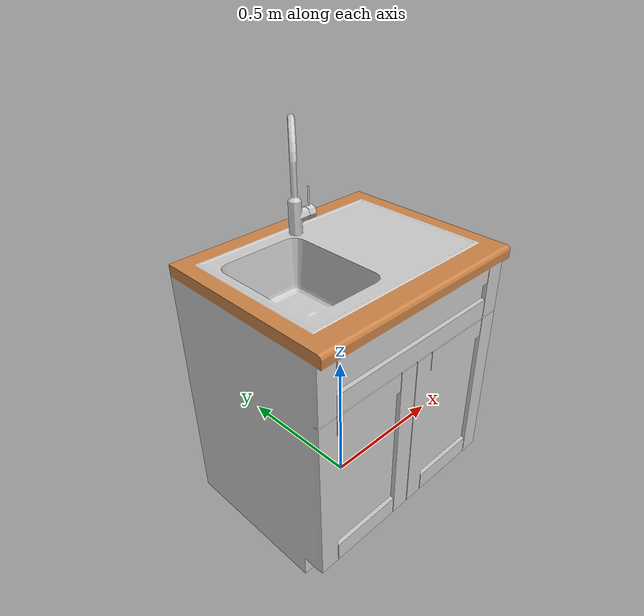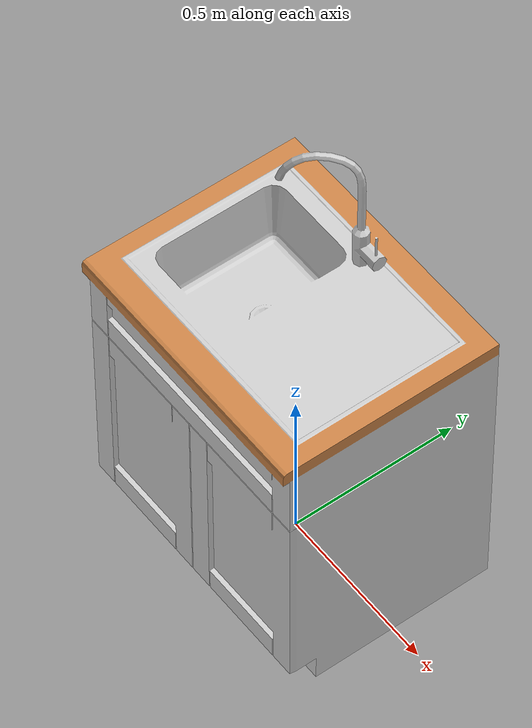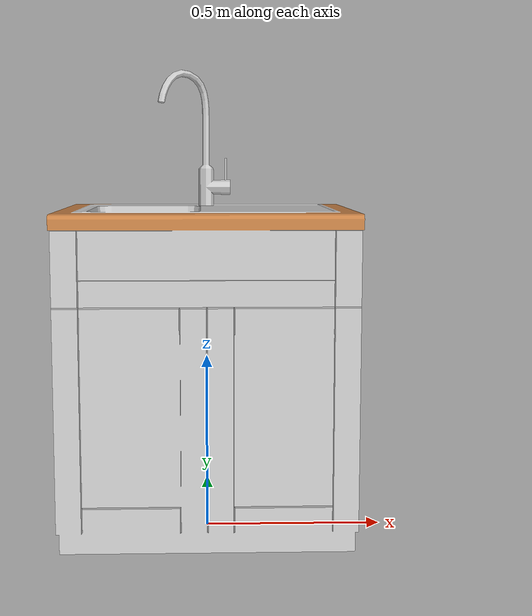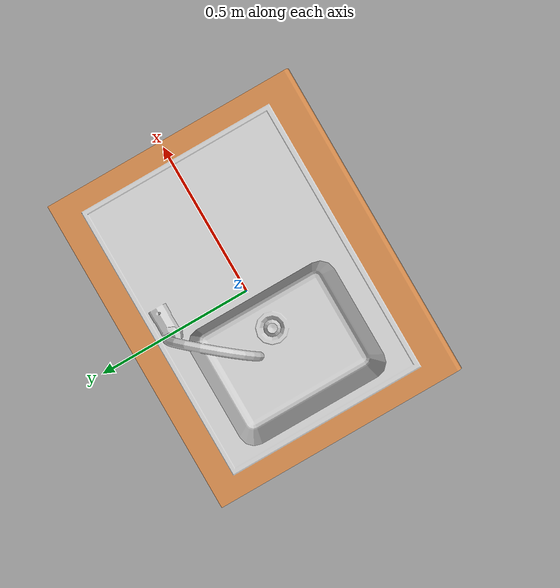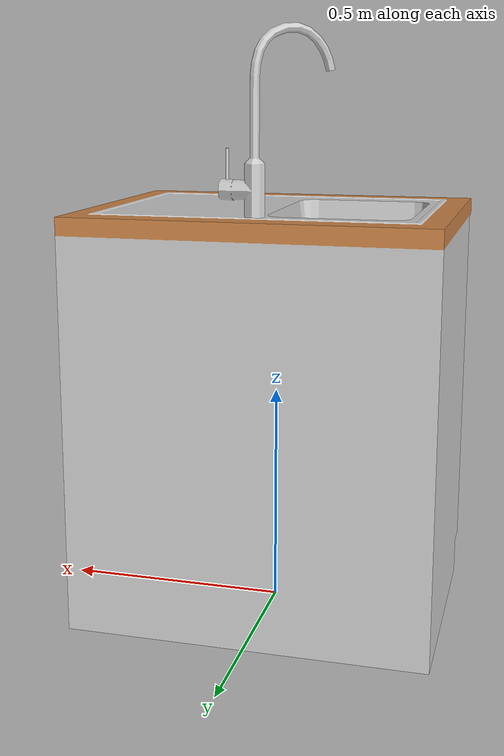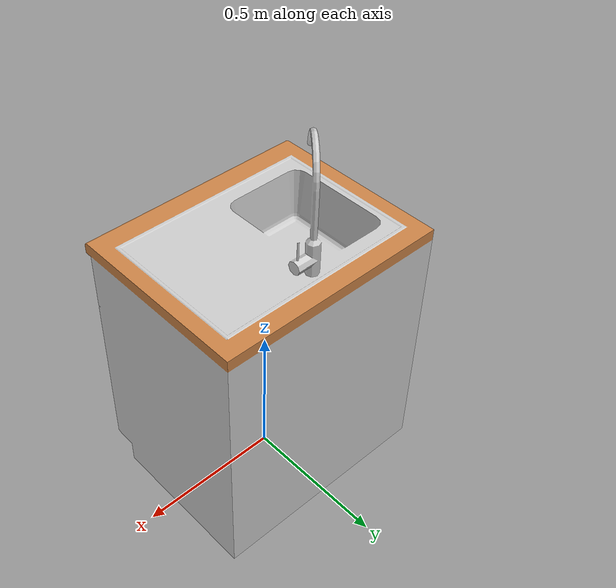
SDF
<?xml version='1.0'?>
<sdf version="1.4">
	<model name="floor_unit_sink">
		<static>1</static>
		<link name="link">
			<visual name="mesh">
				<geometry>
					<mesh>
						<uri>model://meshes/floor_unit_sink.dae</uri>
					</mesh>
				</geometry>
			</visual>
			<collision name="collider">
				<pose>0.19 0 0.46 0 0 0</pose>
				<geometry>
					<box>
						<size>0.417 0.383 0.918</size>
					</box>
				</geometry>
			</collision>
			<collision name="collider">
				<pose>0.0 0.24 0.46 0 0 0</pose>
				<geometry>
					<box>
						<size>0.8 0.117 0.918</size>
					</box>
				</geometry>
			</collision>
			<collision name="collider">
				<pose>0.0 -0.26 0.46 0 0 0</pose>
				<geometry>
					<box>
						<size>0.8 0.12 0.918</size>
					</box>
				</geometry>
			</collision>
			<collision name="collider">
				<pose>-0.36 0 0.46 0 0 0</pose>
				<geometry>
					<box>
						<size>0.081 0.383 0.918</size>
					</box>
				</geometry>
			</collision>
			<collision name="collider">
				<pose>-0.168 0 0.37 0 0 0</pose>
				<geometry>
					<box>
						<size>0.3 0.383 0.738</size>
					</box>
				</geometry>
			</collision>
		</link>
	</model>
</sdf>
